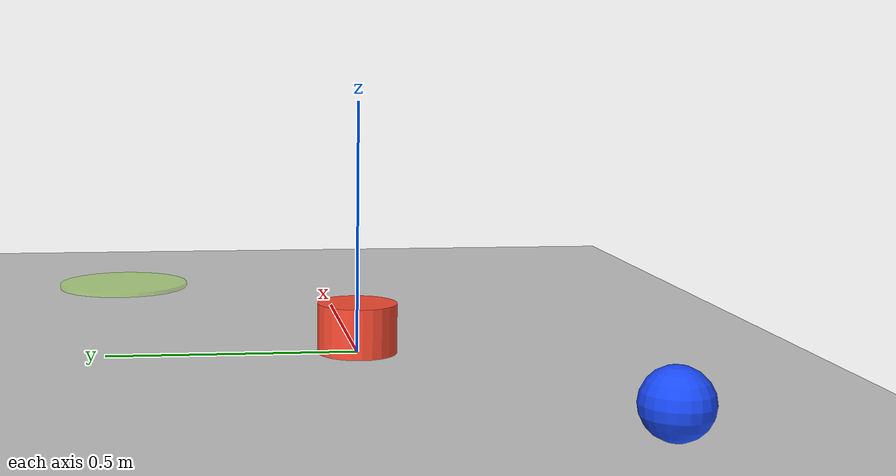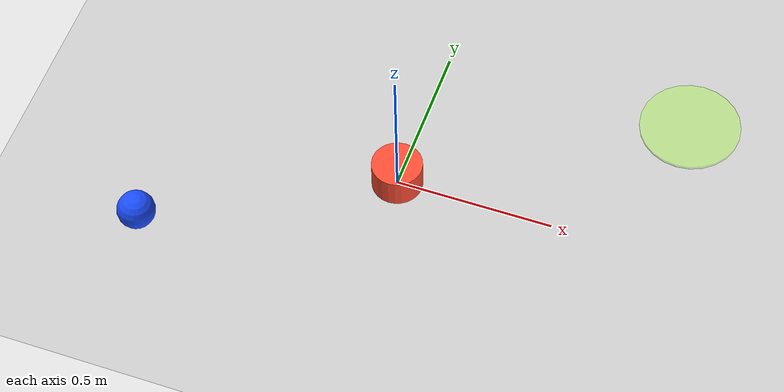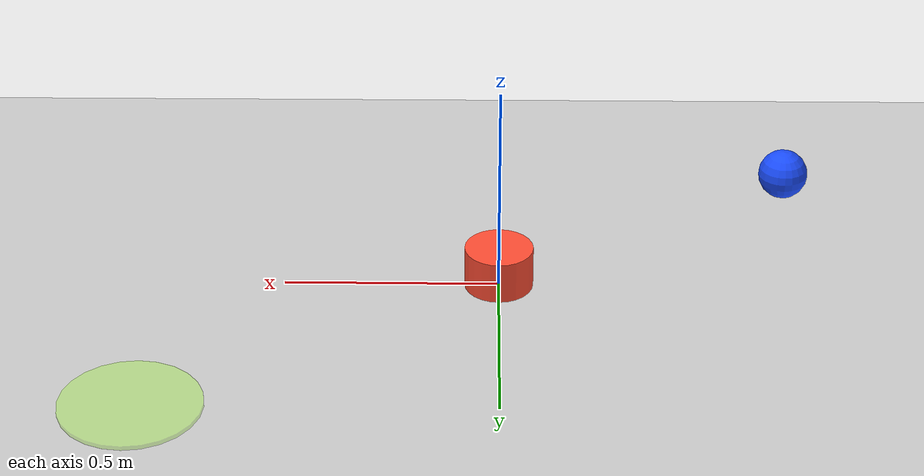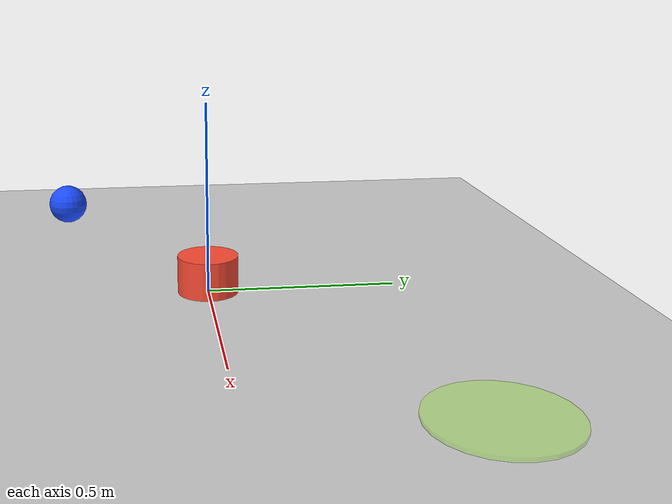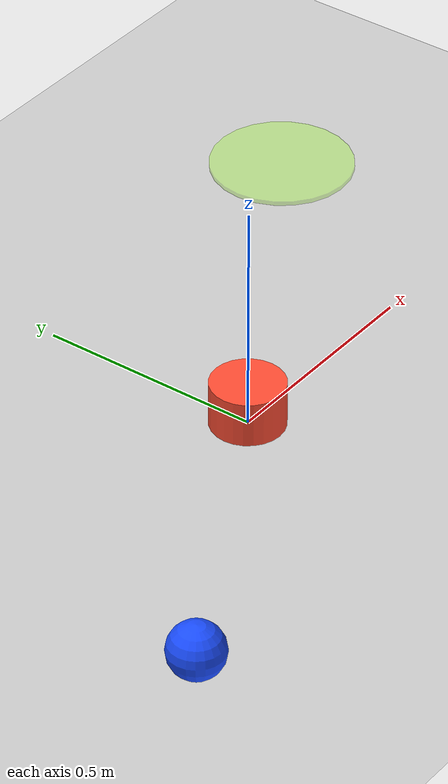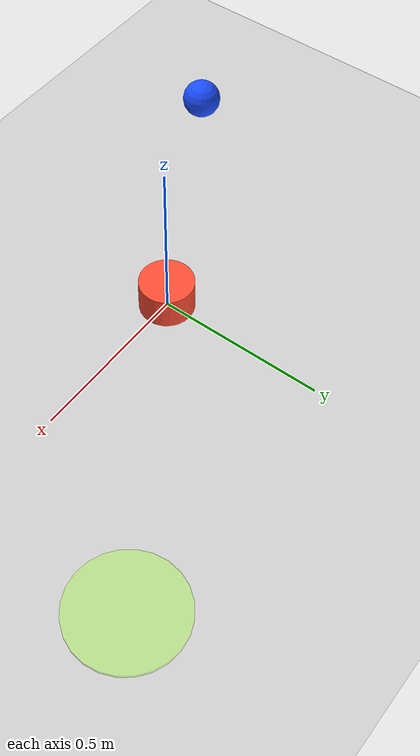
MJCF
<mujoco model="simple_push">

    <compiler angle="radian" coordinate="local"/>

    <option timestep="0.01" gravity="0 0 -9.81" integrator="RK4"/>

    <default>
    <!-- "滑动摩擦，扭转摩擦，滚动摩擦" -->
        <geom friction="0.8 0.02 0.001"
              solref="0.02 1"
              solimp="0.9 0.95 0.001"
              condim="3"/>
    </default>

    <worldbody>
        <!-- 灯光 -->
        <light name="main_light" pos="0 0 4" dir="0 0 -1"/>

        <!-- 固定相机，后面可视化时用 -->
        <camera name="fixed"
                pos="0 -3.2 2.4"
                xyaxes="1 0 0 0 0.65 0.76"/>

        <!-- 桌面 -->
        <geom name="table"
              type="plane"
              size="2 2 0.1"
              rgba="0.8 0.8 0.8 1"
              friction="0.8 0.02 0.001"/>

        <!-- 目标区域：只显示，不参与碰撞 -->
        <geom name="target"
              type="cylinder"
              pos="0.8 0.5 0.005"
              size="0.16 0.005"
              rgba="0.6 1.0 0.1 0.35"
              contype="0"
              conaffinity="0"/>

        <!-- 可控推杆：mocap body，位置由 Python 直接控制 -->
        <body name="pusher" mocap="true" pos="-0.7 -0.4 0.07">
            <geom name="pusher_geom"
                  type="sphere"
                  size="0.06"
                  rgba="0.1 0.3 1.0 1"
                  friction="1.0 0.02 0.001"/>
        </body>

        <!-- 被推动物体：自由圆柱 -->
        <body name="object" pos="0 0 0.05">
            <joint name="object_free" type="free"/>

            <geom name="object_geom"
                  type="cylinder"
                  size="0.08 0.05"
                  mass="0.2"
                  rgba="1.0 0.3 0.2 1"
                  friction="0.7 0.02 0.001"
                  solref="0.02 1"
                  solimp="0.9 0.95 0.001"/>
        </body>
    </worldbody>
</mujoco>
